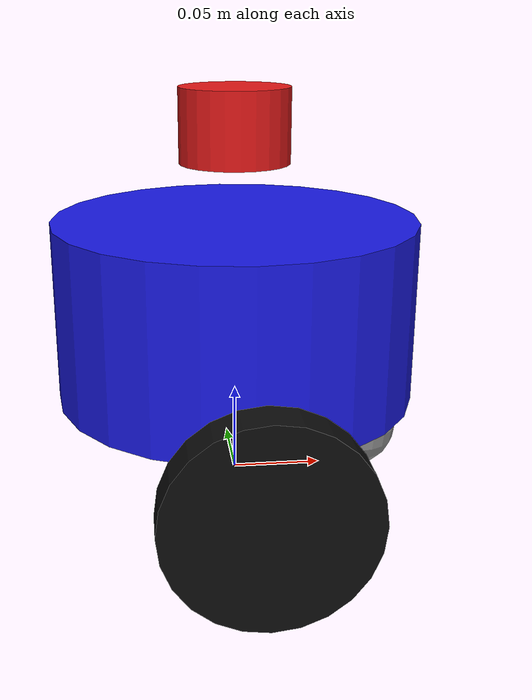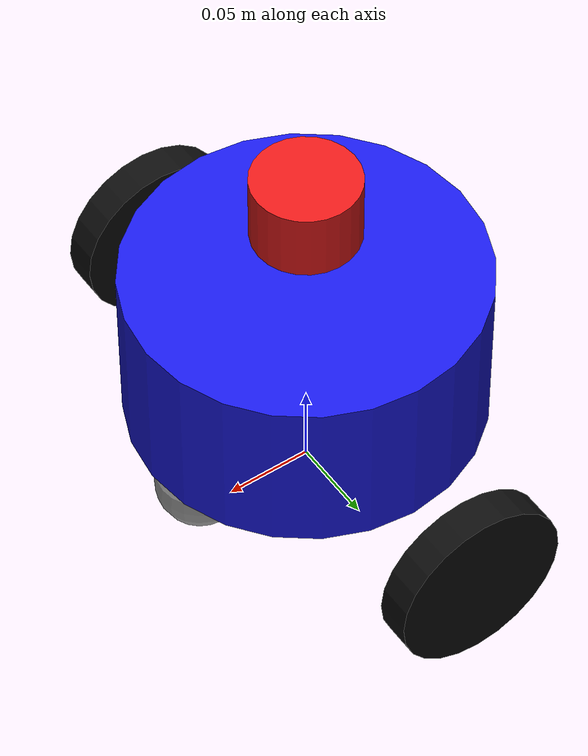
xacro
<?xml version="1.0"?>
<robot name="maze_robot" xmlns:xacro="http://ros.org/wiki/xacro">

  <!-- ── Physical constants ─────────────────────────────────────────── -->
  <xacro:property name="wheel_radius"     value="0.05"/>
  <xacro:property name="wheel_separation" value="0.30"/>
  <xacro:property name="wheel_width"      value="0.02"/>
  <xacro:property name="base_radius"      value="0.10"/>
  <xacro:property name="base_height"      value="0.10"/>
  <xacro:property name="caster_radius"    value="0.025"/>

  <!-- ── Materials ──────────────────────────────────────────────────── -->
  <material name="blue">  <color rgba="0.1 0.1 0.9 1"/></material>
  <material name="black"> <color rgba="0.05 0.05 0.05 1"/></material>
  <material name="red">   <color rgba="0.9 0.1 0.1 1"/></material>
  <material name="grey">  <color rgba="0.6 0.6 0.6 1"/></material>

  <!-- ── base_footprint (ground-plane reference) ───────────────────── -->
  <link name="base_footprint"/>

  <joint name="base_joint" type="fixed">
    <parent link="base_footprint"/>
    <child  link="base_link"/>
    <origin xyz="0 0 ${wheel_radius}" rpy="0 0 0"/>
  </joint>

  <!-- ── base_link ─────────────────────────────────────────────────── -->
  <link name="base_link">
    <visual>
      <geometry><cylinder radius="${base_radius}" length="${base_height}"/></geometry>
      <material name="blue"/>
      <origin xyz="0 0 ${base_height/2}" rpy="0 0 0"/>
    </visual>
    <collision>
      <geometry><cylinder radius="${base_radius}" length="${base_height}"/></geometry>
      <origin xyz="0 0 ${base_height/2}" rpy="0 0 0"/>
    </collision>
    <inertial>
      <mass value="2.0"/>
      <origin xyz="0 0 ${base_height/2}"/>
      <!-- Solid cylinder: ixx = iyy = m*(3r²+h²)/12, izz = m*r²/2 -->
      <inertia ixx="0.0108" ixy="0" ixz="0"
               iyy="0.0108" iyz="0"
               izz="0.0100"/>
    </inertial>
  </link>

  <!-- ── Left wheel ────────────────────────────────────────────────── -->
  <joint name="left_wheel_joint" type="continuous">
    <parent link="base_link"/>
    <child  link="left_wheel"/>
    <origin xyz="0 ${wheel_separation/2} 0" rpy="-1.5708 0 0"/>
    <axis xyz="0 0 1"/>
  </joint>

  <link name="left_wheel">
    <visual>
      <geometry><cylinder radius="${wheel_radius}" length="${wheel_width}"/></geometry>
      <material name="black"/>
    </visual>
    <collision>
      <geometry><cylinder radius="${wheel_radius}" length="${wheel_width}"/></geometry>
    </collision>
    <inertial>
      <mass value="0.5"/>
      <!-- Thin disk: ixx=iyy=m*(3r²+h²)/12, izz=m*r²/2 -->
      <inertia ixx="0.000652" ixy="0" ixz="0"
               iyy="0.000652" iyz="0"
               izz="0.000625"/>
    </inertial>
  </link>

  <!-- ── Right wheel ───────────────────────────────────────────────── -->
  <joint name="right_wheel_joint" type="continuous">
    <parent link="base_link"/>
    <child  link="right_wheel"/>
    <origin xyz="0 -${wheel_separation/2} 0" rpy="-1.5708 0 0"/>
    <axis xyz="0 0 1"/>
  </joint>

  <link name="right_wheel">
    <visual>
      <geometry><cylinder radius="${wheel_radius}" length="${wheel_width}"/></geometry>
      <material name="black"/>
    </visual>
    <collision>
      <geometry><cylinder radius="${wheel_radius}" length="${wheel_width}"/></geometry>
    </collision>
    <inertial>
      <mass value="0.5"/>
      <inertia ixx="0.000652" ixy="0" ixz="0"
               iyy="0.000652" iyz="0"
               izz="0.000625"/>
    </inertial>
  </link>

  <!-- ── Caster wheel (passive, near-zero friction) ────────────────── -->
  <joint name="caster_joint" type="fixed">
    <parent link="base_link"/>
    <child  link="caster_wheel"/>
    <origin xyz="0.07 0 -0.025" rpy="0 0 0"/>
  </joint>

  <link name="caster_wheel">
    <visual>
      <geometry><sphere radius="${caster_radius}"/></geometry>
      <material name="grey"/>
    </visual>
    <collision>
      <geometry><sphere radius="${caster_radius}"/></geometry>
    </collision>
    <inertial>
      <mass value="0.1"/>
      <inertia ixx="0.0001" ixy="0" ixz="0"
               iyy="0.0001" iyz="0"
               izz="0.0001"/>
    </inertial>
  </link>

  <!-- ── Laser mount ───────────────────────────────────────────────── -->
  <joint name="laser_joint" type="fixed">
    <parent link="base_link"/>
    <child  link="laser_frame"/>
    <origin xyz="0 0 ${base_height + 0.05}" rpy="0 0 0"/>
  </joint>

  <link name="laser_frame">
    <visual>
      <geometry><cylinder radius="0.03" length="0.04"/></geometry>
      <material name="red"/>
    </visual>
    <inertial>
      <mass value="0.05"/>
      <inertia ixx="0.00001" ixy="0" ixz="0"
               iyy="0.00001" iyz="0"
               izz="0.00001"/>
    </inertial>
  </link>

  <!-- ══════════════════════════════════════════════════════════════════
       Gazebo Plugins
  ══════════════════════════════════════════════════════════════════ -->

  <!-- Differential Drive -->
  <gazebo>
    <plugin filename="gz-sim-diff-drive-system"
            name="gz::sim::systems::DiffDrive">
      <left_joint>left_wheel_joint</left_joint>
      <right_joint>right_wheel_joint</right_joint>
      <wheel_separation>${wheel_separation}</wheel_separation>
      <wheel_radius>${wheel_radius}</wheel_radius>
      <odom_publish_frequency>50</odom_publish_frequency>
      <topic>/cmd_vel</topic>
      <odom_topic>/odom</odom_topic>
      <frame_id>odom</frame_id>
      <child_frame_id>base_footprint</child_frame_id>
      <!-- Publish TF from odom → base_footprint -->
      <tf_topic>/model/maze_robot/tf</tf_topic>
    </plugin>
  </gazebo>

  <!-- Joint State Publisher -->
  <gazebo>
    <plugin filename="gz-sim-joint-state-publisher-system"
            name="gz::sim::systems::JointStatePublisher">
      <topic>/joint_states</topic>
      <joint_name>left_wheel_joint</joint_name>
      <joint_name>right_wheel_joint</joint_name>
    </plugin>
  </gazebo>

  <!-- Caster wheel: near-zero friction so it doesn't drag -->
  <gazebo reference="caster_wheel">
    <mu1>0.001</mu1>
    <mu2>0.001</mu2>
    <kp>1000000.0</kp>
    <kd>100.0</kd>
  </gazebo>

  <!-- Wheel friction (realistic rubber) -->
  <gazebo reference="left_wheel">
    <mu1>1.5</mu1>
    <mu2>0.5</mu2>
  </gazebo>
  <gazebo reference="right_wheel">
    <mu1>1.5</mu1>
    <mu2>0.5</mu2>
  </gazebo>

  <!-- GPU LIDAR (360° / 1° resolution) -->
  <gazebo reference="laser_frame">
    <sensor type="gpu_lidar" name="laser_sensor">
      <topic>/scan</topic>
      <pose>0 0 0 0 0 0</pose>
      <visualize>true</visualize>
      <update_rate>15</update_rate>
      <lidar>
        <scan>
          <horizontal>
            <samples>360</samples>
            <resolution>1</resolution>
            <min_angle>0.0</min_angle>
            <max_angle>6.28318530718</max_angle>
          </horizontal>
        </scan>
        <range>
          <min>0.08</min>
          <max>10.0</max>
          <resolution>0.01</resolution>
        </range>
        <noise>
          <type>gaussian</type>
          <mean>0.0</mean>
          <stddev>0.005</stddev>
        </noise>
      </lidar>
      <!-- Make sure the scan header uses laser_frame -->
      <frame_id>laser_frame</frame_id>
    </sensor>
  </gazebo>

</robot>
